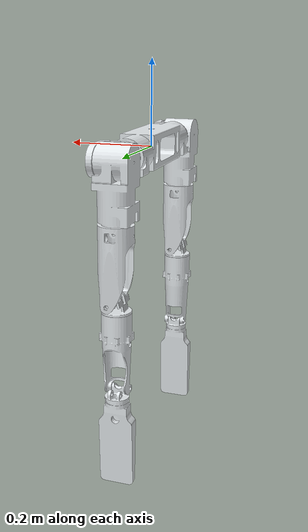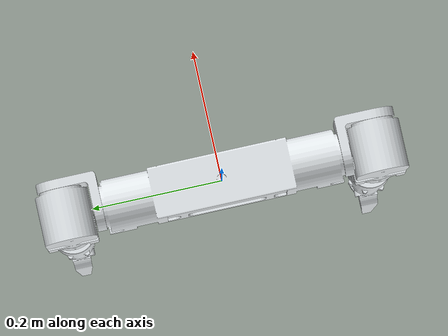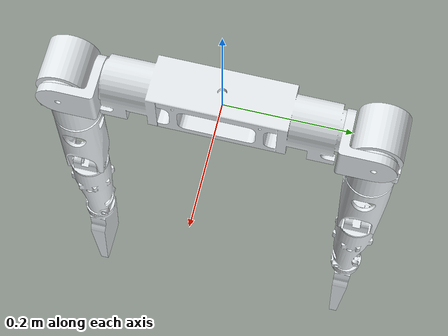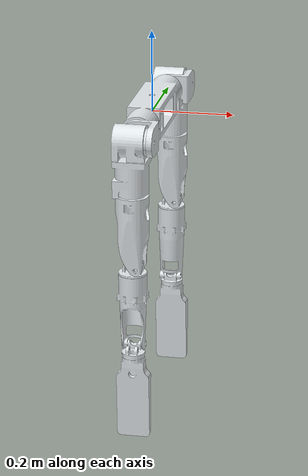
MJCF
<mujoco model="cx_description">
  <compiler angle="radian" meshdir="meshes/" autolimits="true"/>

  <option timestep ="0.001" integrator ="RK4">
    <flag sensornoise = "disable" energy="enable" contact ="enable" />
  </option>
  <asset>
    <mesh name="base_link" file="base_link.STL"/>
    <mesh name="Link101" file="Link101.STL"/>
    <mesh name="Link102" file="Link102.STL"/>
    <mesh name="Link103" file="Link103.STL"/>
    <mesh name="Link104" file="Link104.STL"/>
    <mesh name="Link105" file="Link105.STL"/>
    <mesh name="Link106" file="Link106.STL"/>
    <mesh name="Link201" file="Link201.STL"/>
    <mesh name="Link202" file="Link202.STL"/>
    <mesh name="Link203" file="Link203.STL"/>
    <mesh name="Link204" file="Link204.STL"/>
    <mesh name="Link205" file="Link205.STL"/>
    <mesh name="Link206" file="Link206.STL"/>
  </asset>
  <worldbody>
    <geom type="mesh" contype="0" conaffinity="0" group="1" density="0" rgba="0.898039 0.917647 0.929412 1" mesh="base_link"/>
    <geom type="mesh" rgba="0.898039 0.917647 0.929412 1" mesh="base_link"/>
    <body name="Link101" pos="0 0.241 0" quat="0.499998 -0.500002 -0.5 -0.5">
      <inertial pos="0 0.031119 -0.031336" quat="0.654197 -0.268376 0.268376 0.654197" mass="0.30814" diaginertia="0.000400672 0.00036302 0.000218998"/>
      <joint name="joint101" pos="0 0 0" axis="0 0 -1" range="-3.14 3.14"/>
      <geom type="mesh" contype="0" conaffinity="0" group="1" density="0" rgba="0.89804 0.91765 0.92941 1" mesh="Link101"/>
      <geom type="mesh" rgba="0.89804 0.91765 0.92941 1" mesh="Link101"/>
      <body name="Link102" quat="0.499998 -0.500002 0.5 0.5">
        <inertial pos="6.5582e-11 0.047474 -0.00034923" quat="0.755038 0.655681 0 0" mass="2.6974" diaginertia="0.0030083 0.00285529 0.00254031"/>
        <joint name="joint102" pos="0 0 0" axis="0 0 1" range="-3.14 3.14"/>
        <geom type="mesh" contype="0" conaffinity="0" group="1" density="0" rgba="0.89804 0.91765 0.92941 1" mesh="Link102"/>
        <geom type="mesh" rgba="0.89804 0.91765 0.92941 1" mesh="Link102"/>
        <body name="Link103" pos="0 0.31051 0" quat="0.499998 -0.5 -0.5 -0.500002">
          <inertial pos="0.00403786 -8.55405e-07 -0.110449" quat="0.999208 -3.77272e-05 0.0397992 7.12489e-05" mass="0.542683" diaginertia="0.00197126 0.00182891 0.000626121"/>
          <joint name="joint103" pos="0 0 0" axis="0 0 1" range="-3.14 3.14"/>
          <geom type="mesh" contype="0" conaffinity="0" group="1" density="0" rgba="0.898039 0.917647 0.929412 1" mesh="Link103"/>
          <geom type="mesh" rgba="0.898039 0.917647 0.929412 1" mesh="Link103"/>
          <body name="Link104" pos="0.0125 0 0" quat="0.707105 0.707108 0 0">
            <inertial pos="-0.010629 0.0077446 2.2742e-09" quat="0.488573 0.488573 0.511172 0.511172" mass="0.10826" diaginertia="5.26472e-05 4.1126e-05 4.02928e-05"/>
            <joint name="joint104" pos="0 0 0" axis="0 0 -1" range="-3.14 3.14"/>
            <geom type="mesh" contype="0" conaffinity="0" group="1" density="0" rgba="0.89804 0.91765 0.92941 1" mesh="Link104"/>
            <geom type="mesh" rgba="0.89804 0.91765 0.92941 1" mesh="Link104"/>
            <body name="Link105" pos="-0.0125 0.20712 0" quat="0.499998 -0.5 0.5 0.500002">
              <inertial pos="0.00133868 -2.52078e-07 -0.136878" quat="0.99827 4.69401e-05 0.0587985 3.19321e-05" mass="0.823765" diaginertia="0.000809548 0.00078814 0.000516044"/>
              <joint name="joint105" pos="0 0 0" axis="0 0 1" range="-3.14 3.14"/>
              <geom type="mesh" contype="0" conaffinity="0" group="1" density="0" rgba="0.898039 0.917647 0.929412 1" mesh="Link105"/>
              <geom type="mesh" rgba="0.898039 0.917647 0.929412 1" mesh="Link105"/>
              <body name="Link106" pos="0.015 0 0" quat="0.707105 0.707108 0 0">
                <inertial pos="-0.0147561 0.115479 -1.14344e-08" quat="0.707107 0.707107 0.00058135 0.00058135" mass="1.03484" diaginertia="0.00380935 0.0034122 0.000540677"/>
                <joint name="joint106" pos="0 0 0" axis="0 0 -1" range="-3.14 3.14"/>
                <geom type="mesh" contype="0" conaffinity="0" group="1" density="0" rgba="0.898039 0.917647 0.929412 1" mesh="Link106"/>
                <geom type="mesh" rgba="0.898039 0.917647 0.929412 1" mesh="Link106"/>
              </body>
            </body>
          </body>
        </body>
      </body>
    </body>
    <body name="Link201" pos="0 -0.241 0" quat="0.499998 -0.500002 -0.5 -0.5">
      <inertial pos="0 0.0311195 0.0313359" quat="0.654197 0.268376 -0.268376 0.654197" mass="0.308135" diaginertia="0.000400674 0.000363015 0.000218999"/>
      <joint name="joint201" pos="0 0 0" axis="0 0 -1" range="-3.14 3.14"/>
      <geom type="mesh" contype="0" conaffinity="0" group="1" density="0" rgba="0.898039 0.917647 0.929412 1" mesh="Link201"/>
      <geom type="mesh" rgba="0.898039 0.917647 0.929412 1" mesh="Link201"/>
      <body name="Link202" quat="0.499998 -0.500002 0.5 0.5">
        <inertial pos="6.55818e-11 0.047474 -0.000349232" quat="0.755038 0.655682 0 0" mass="2.69737" diaginertia="0.00300828 0.00285527 0.00254029"/>
        <joint name="joint202" pos="0 0 0" axis="0 0 -1" range="-3.14 3.14"/>
        <geom type="mesh" contype="0" conaffinity="0" group="1" density="0" rgba="0.898039 0.917647 0.929412 1" mesh="Link202"/>
        <geom type="mesh" rgba="0.898039 0.917647 0.929412 1" mesh="Link202"/>
        <body name="Link203" pos="0 0.31051 0" quat="0.499998 -0.5 -0.5 -0.500002">
          <inertial pos="0.0040379 -8.554e-07 -0.11045" quat="0.999208 -3.77286e-05 0.0397988 7.12193e-05" mass="0.54268" diaginertia="0.00197131 0.0018289 0.000626121"/>
          <joint name="joint203" pos="0 0 0" axis="0 0 -1" range="-3.14 3.14"/>
          <geom type="mesh" contype="0" conaffinity="0" group="1" density="0" rgba="0.89804 0.91765 0.92941 1" mesh="Link203"/>
          <geom type="mesh" rgba="0.89804 0.91765 0.92941 1" mesh="Link203"/>
          <body name="Link204" pos="0.0125 0 0" quat="0.707105 0.707108 0 0">
            <inertial pos="-0.0106289 0.00774461 2.53762e-09" quat="0.488573 0.488573 0.511172 0.511172" mass="0.108257" diaginertia="5.26468e-05 4.11257e-05 4.02926e-05"/>
            <joint name="joint204" pos="0 0 0" axis="0 0 -1" range="-3.14 3.14"/>
            <geom type="mesh" contype="0" conaffinity="0" group="1" density="0" rgba="0.898039 0.917647 0.929412 1" mesh="Link204"/>
            <geom type="mesh" rgba="0.898039 0.917647 0.929412 1" mesh="Link204"/>
            <body name="Link205" pos="-0.0125 0.20712 0" quat="0.499998 -0.5 0.5 0.500002">
              <inertial pos="-0.0013387 2.5208e-07 -0.13688" quat="0.99827 -4.69404e-05 -0.058799 3.19376e-05" mass="0.82376" diaginertia="0.000809545 0.00078814 0.000516045"/>
              <joint name="joint205" pos="0 0 0" axis="0 0 -1" range="-3.14 3.14"/>
              <geom type="mesh" contype="0" conaffinity="0" group="1" density="0" rgba="0.89804 0.91765 0.92941 1" mesh="Link205"/>
              <geom type="mesh" rgba="0.89804 0.91765 0.92941 1" mesh="Link205"/>
              <body name="Link206" pos="-0.015 0 0" quat="0.707105 0.707108 0 0">
                <inertial pos="0.014756 0.11548 1.1434e-08" quat="0.707107 0.707107 -0.000581359 -0.000581359" mass="1.0348" diaginertia="0.00380931 0.0034122 0.000540681"/>
                <joint name="joint206" pos="0 0 0" axis="0 0 1" range="-3.14 3.14"/>
                <geom type="mesh" contype="0" conaffinity="0" group="1" density="0" rgba="0.89804 0.91765 0.92941 1" mesh="Link206"/>
                <geom type="mesh" rgba="0.89804 0.91765 0.92941 1" mesh="Link206"/>
              </body>
            </body>
          </body>
        </body>
      </body>
    </body>
  </worldbody>

     <actuator>
    <motor joint="joint101" name ="t101" gear = "1" ctrllimited="true" ctrlrange="-3.14 3.14"/>
    <position name ="p101" joint ="joint101" kp="100"/>
    <velocity name ="v101" joint ="joint101" kv="0.1"/>

    <motor joint="joint102" name ="t102" gear = "1" ctrllimited="true" ctrlrange="-3.14 3.14"/>
    <position name ="p102" joint ="joint102" kp="100"/>
    <velocity name ="v102" joint ="joint102" kv="0.1"/>

    <motor joint="joint103" name ="t103" gear = "1" ctrllimited="true" ctrlrange="-3.14 3.14"/>
    <position name ="p103" joint ="joint103" kp="100"/>
    <velocity name ="v103" joint ="joint103" kv="0.1"/>

    <motor joint="joint104" name ="t104" gear = "1" ctrllimited="true" ctrlrange="-3.14 3.14"/>
    <position name ="p104" joint ="joint104" kp="100"/>
    <velocity name ="v104" joint ="joint104" kv="0.1"/>

    <motor joint="joint105" name ="t105" gear = "1" ctrllimited="true" ctrlrange="-3.14 3.14"/>
    <position name ="p105" joint ="joint105" kp="100"/>
    <velocity name ="v105" joint ="joint105" kv="0.1"/>

    <motor joint="joint106" name ="t106" gear = "1" ctrllimited="true" ctrlrange="-3.14 3.14"/>
    <position name ="p106" joint ="joint106" kp="100"/>
    <velocity name ="v106" joint ="joint106" kv="0.1"/>

    <motor joint="joint201" name ="t201" gear = "1" ctrllimited="true" ctrlrange="-3.14 3.14"/>
    <position name ="p201" joint ="joint201" kp="100"/>
    <velocity name ="v201" joint ="joint201" kv="0.1"/>

    <motor joint="joint202" name ="t202" gear = "1" ctrllimited="true" ctrlrange="-3.14 3.14"/>
    <position name ="p202" joint ="joint202" kp="100"/>
    <velocity name ="v202" joint ="joint202" kv="0.1"/>

    <motor joint="joint203" name ="t203" gear = "1" ctrllimited="true" ctrlrange="-3.14 3.14"/>
    <position name ="p203" joint ="joint203" kp="100"/>
    <velocity name ="v203" joint ="joint203" kv="0.1"/>

    <motor joint="joint204" name ="t204" gear = "1" ctrllimited="true" ctrlrange="-3.14 3.14"/>
    <position name ="p204" joint ="joint204" kp="100"/>
    <velocity name ="v204" joint ="joint204" kv="0.1"/>

    <motor joint="joint205" name ="t205" gear = "1" ctrllimited="true" ctrlrange="-3.14 3.14"/>
    <position name ="p205" joint ="joint205" kp="100"/>
    <velocity name ="v205" joint ="joint205" kv="0.1"/>

    <motor joint="joint206" name ="t206" gear = "1" ctrllimited="true" ctrlrange="-3.14 3.14"/>
    <position name ="p206" joint ="joint206" kp="100"/>
    <velocity name ="v206" joint ="joint206" kv="0.1"/>

    </actuator>

<sensor>
    <jointpos joint ="joint101" noise="0.2"/>
    <jointvel joint ="joint101" noise="0.2"/>

    <jointpos joint ="joint102" noise="0.2"/>
    <jointvel joint ="joint102" noise="0.2"/>

    <jointpos joint ="joint103" noise="0.2"/>
    <jointvel joint ="joint103" noise="0.2"/>

    <jointpos joint ="joint104" noise="0.2"/>
    <jointvel joint ="joint104" noise="0.2"/>

    <jointpos joint ="joint105" noise="0.2"/>
    <jointvel joint ="joint105" noise="0.2"/>

    <jointpos joint ="joint106" noise="0.2"/>
    <jointvel joint ="joint106" noise="0.2"/>

    <jointpos joint ="joint201" noise="0.2"/>
    <jointvel joint ="joint201" noise="0.2"/>

    <jointpos joint ="joint202" noise="0.2"/>
    <jointvel joint ="joint202" noise="0.2"/>

    <jointpos joint ="joint203" noise="0.2"/>
    <jointvel joint ="joint203" noise="0.2"/>

    <jointpos joint ="joint204" noise="0.2"/>
    <jointvel joint ="joint204" noise="0.2"/>

    <jointpos joint ="joint205" noise="0.2"/>
    <jointvel joint ="joint205" noise="0.2"/>

    <jointpos joint ="joint206" noise="0.2"/>
    <jointvel joint ="joint206" noise="0.2"/>

</sensor>

</mujoco>
